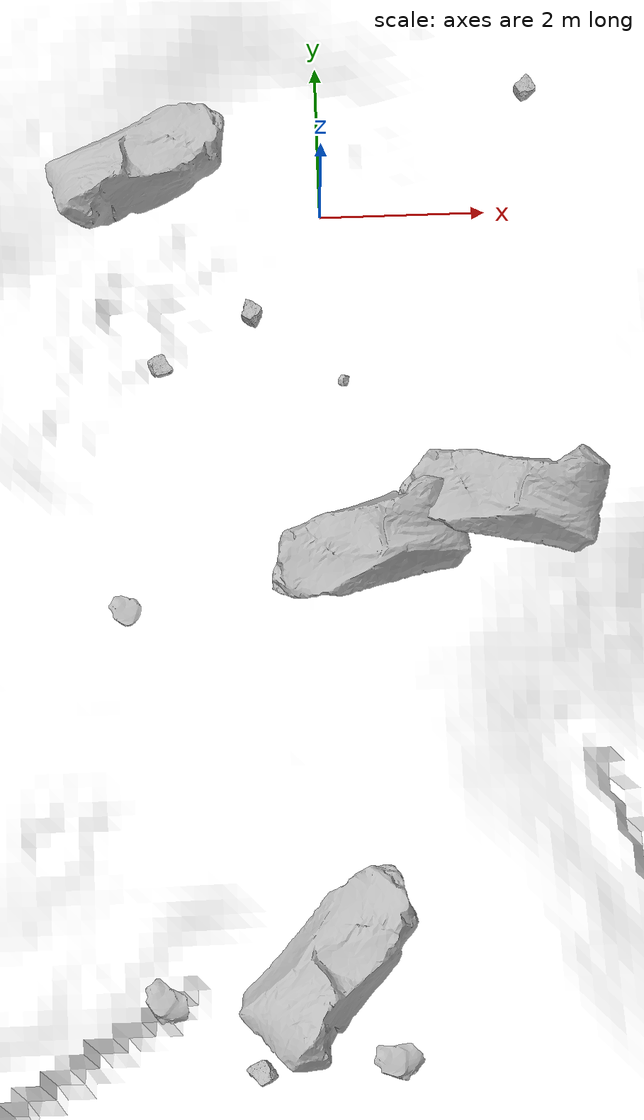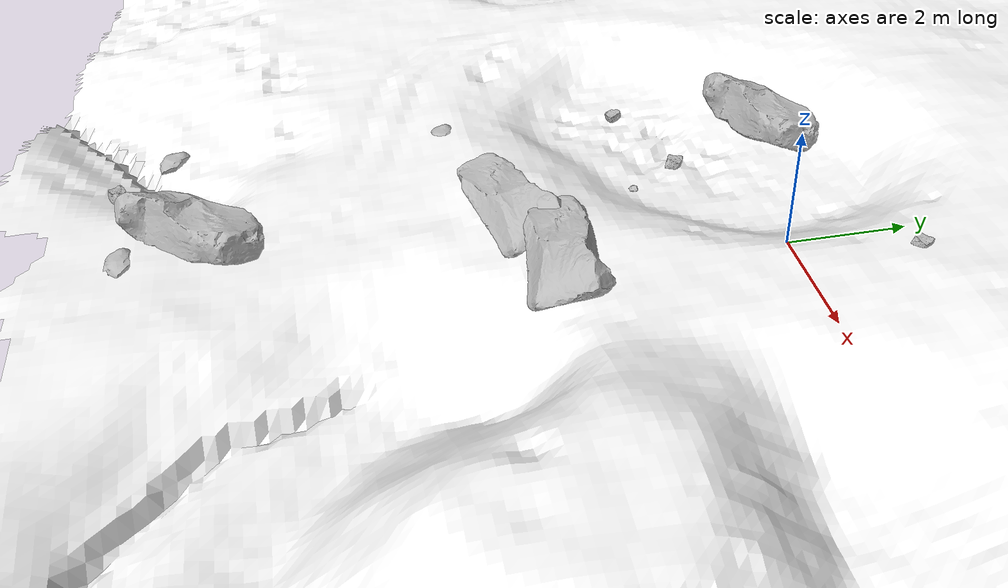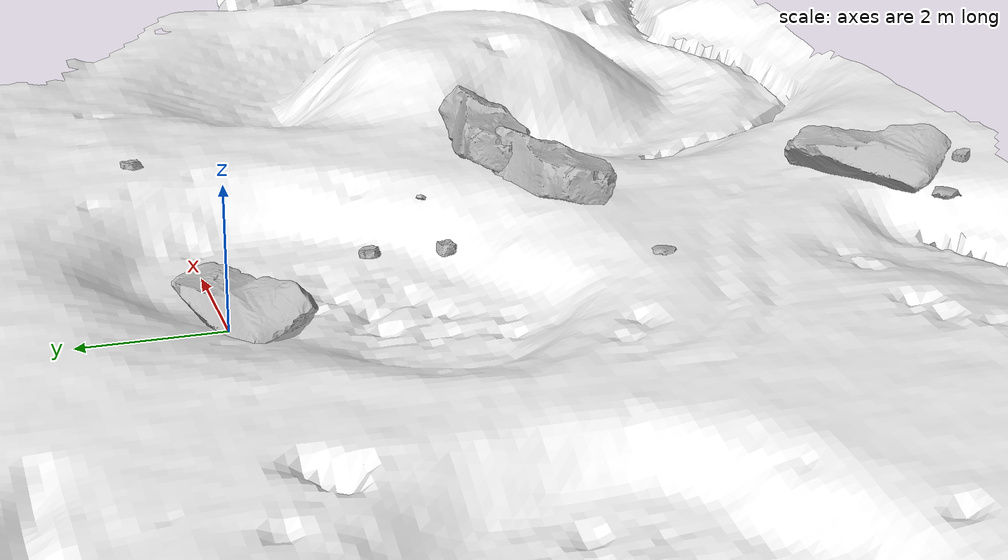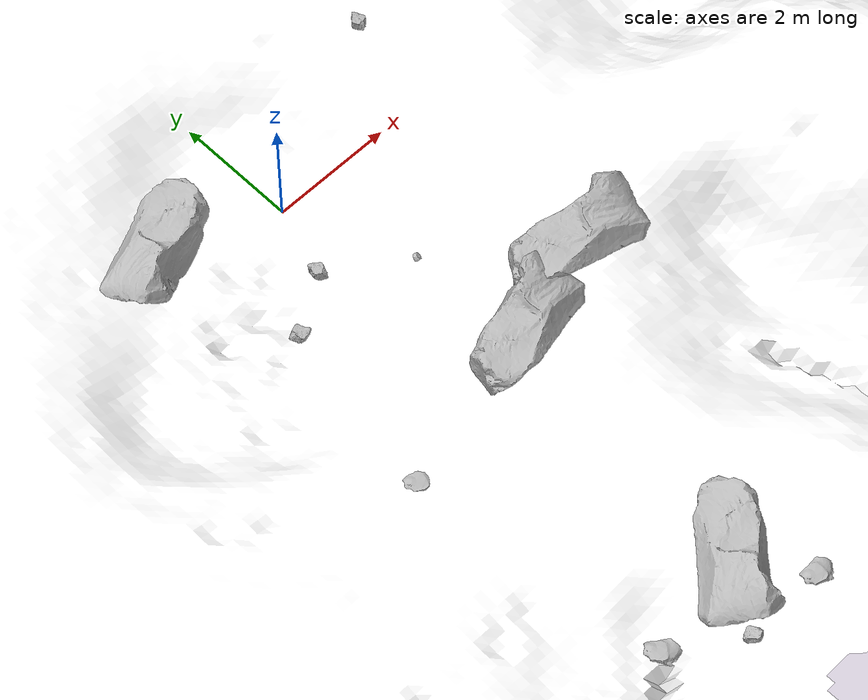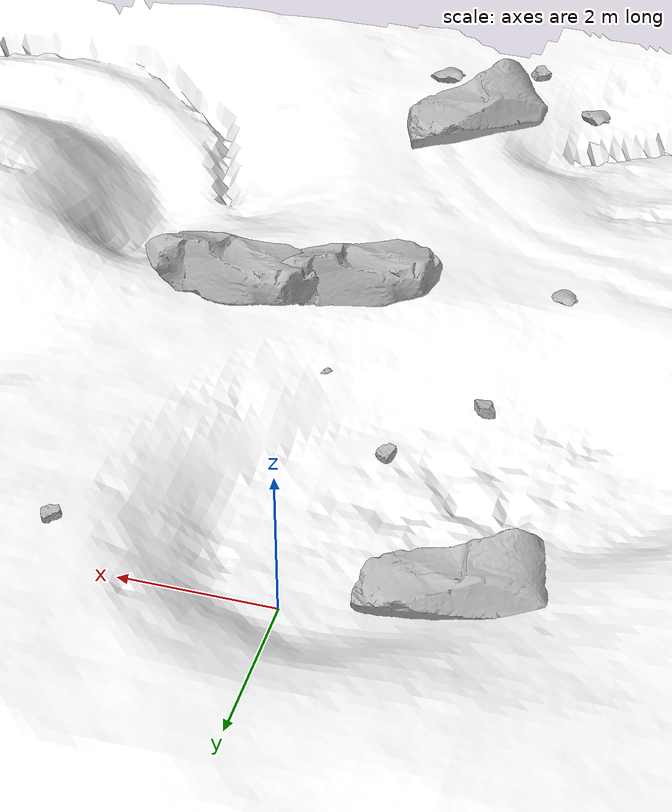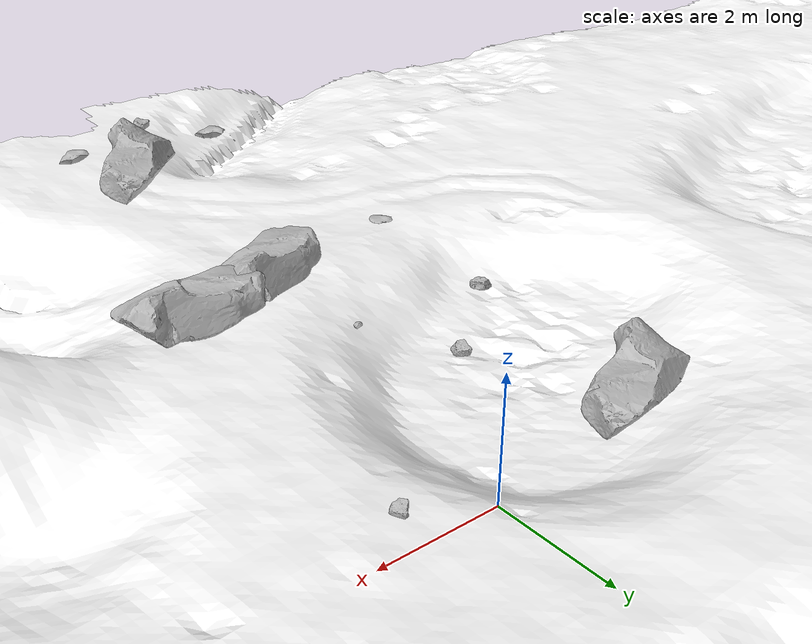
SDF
<sdf version="1.7">
 <world name="marsyard">
  <include><uri>model://mars_yard</uri></include>
  <model name="Rock_23">
   <static>true</static>
   <pose>-1.2053 -5.1009 1.3410 0.0000 0.0000 -0.7992</pose>
   <link name="link">
    <visual name="visual">
     <geometry><mesh><uri>package://rock_generator/rocks_ws/rock_5/meshes/rock_5.obj</uri></mesh></geometry>
    </visual>
   </link>
  </model>
  <model name="Rock_71">
   <static>true</static>
   <pose>1.1582 -5.7052 0.5465 0.0000 0.0000 -2.7900</pose>
   <link name="link">
    <visual name="visual">
     <geometry><mesh><uri>package://rock_generator/rocks_ws/rock_4/meshes/rock_4.obj</uri></mesh></geometry>
    </visual>
   </link>
  </model>
  <model name="Rock_77">
   <static>true</static>
   <pose>0.3291 -4.5137 1.3521 0.0000 0.0000 0.4477</pose>
   <link name="link">
    <visual name="visual">
     <geometry><mesh><uri>package://rock_generator/rocks_ws/rock_4/meshes/rock_4.obj</uri></mesh></geometry>
    </visual>
   </link>
  </model>
  <model name="Rock_81">
   <static>true</static>
   <pose>-0.8604 -1.6707 1.1359 0.0000 0.0000 0.2757</pose>
   <link name="link">
    <visual name="visual">
     <geometry><mesh><uri>package://rock_generator/rocks_ws/rock_1/meshes/rock_1.obj</uri></mesh></geometry>
    </visual>
    <collision name="collision">
     <geometry><mesh><uri>package://rock_generator/rocks_ws/rock_1/meshes/rock_1.obj</uri></mesh></geometry>
    </collision>
   </link>
  </model>
  <model name="Rock_83">
   <static>true</static>
   <pose>2.3586 0.8296 1.5374 0.0000 0.0000 -0.2413</pose>
   <link name="link">
    <visual name="visual">
     <geometry><mesh><uri>package://rock_generator/rocks_ws/rock_1/meshes/rock_1.obj</uri></mesh></geometry>
    </visual>
    <collision name="collision">
     <geometry><mesh><uri>package://rock_generator/rocks_ws/rock_1/meshes/rock_1.obj</uri></mesh></geometry>
    </collision>
   </link>
  </model>
  <model name="Rock_91">
   <static>true</static>
   <pose>-2.0478 -7.4147 1.0240 0.0000 0.0000 1.4463</pose>
   <link name="link">
    <visual name="visual">
     <geometry><mesh><uri>package://rock_generator/rocks_ws/rock_8/meshes/rock_8.obj</uri></mesh></geometry>
    </visual>
    <collision name="collision">
     <geometry><mesh><uri>package://rock_generator/rocks_ws/rock_8/meshes/rock_8.obj</uri></mesh></geometry>
    </collision>
   </link>
  </model>
  <model name="Rock_104">
   <static>true</static>
   <pose>0.4378 -9.8553 1.5216 0.0000 0.0000 -0.2820</pose>
   <link name="link">
    <visual name="visual">
     <geometry><mesh><uri>package://rock_generator/rocks_ws/rock_8/meshes/rock_8.obj</uri></mesh></geometry>
    </visual>
    <collision name="collision">
     <geometry><mesh><uri>package://rock_generator/rocks_ws/rock_8/meshes/rock_8.obj</uri></mesh></geometry>
    </collision>
   </link>
  </model>
  <model name="Rock_146">
   <static>true</static>
   <pose>-0.1375 -8.8663 1.2701 0.0000 0.0000 -2.1464</pose>
   <link name="link">
    <visual name="visual">
     <geometry><mesh><uri>package://rock_generator/rocks_ws/rock_4/meshes/rock_4.obj</uri></mesh></geometry>
    </visual>
   </link>
  </model>
  <model name="Rock_156">
   <static>true</static>
   <pose>1.7959 -4.0496 1.4847 0.0000 0.0000 0.0170</pose>
   <link name="link">
    <visual name="visual">
     <geometry><mesh><uri>package://rock_generator/rocks_ws/rock_4/meshes/rock_4.obj</uri></mesh></geometry>
    </visual>
    <collision name="collision">
     <geometry><mesh><uri>package://rock_generator/rocks_ws/rock_4/meshes/rock_4.obj</uri></mesh></geometry>
    </collision>
   </link>
  </model>
  <model name="Rock_162">
   <static>true</static>
   <pose>-2.2213 -5.1401 1.3154 0.0000 0.0000 -0.5441</pose>
   <link name="link">
    <visual name="visual">
     <geometry><mesh><uri>package://rock_generator/rocks_ws/rock_8/meshes/rock_8.obj</uri></mesh></geometry>
    </visual>
   </link>
  </model>
  <model name="Rock_165">
   <static>true</static>
   <pose>0.1664 -2.6310 1.5144 0.0000 0.0000 1.1619</pose>
   <link name="link">
    <visual name="visual">
     <geometry><mesh><uri>package://rock_generator/rocks_ws/rock_5/meshes/rock_5.obj</uri></mesh></geometry>
    </visual>
   </link>
  </model>
  <model name="Rock_186">
   <static>true</static>
   <pose>-0.6477 1.9902 0.8627 0.0000 0.0000 2.7887</pose>
   <link name="link">
    <visual name="visual">
     <geometry><mesh><uri>package://rock_generator/rocks_ws/rock_1/meshes/rock_1.obj</uri></mesh></geometry>
    </visual>
   </link>
  </model>
  <model name="Rock_191">
   <static>true</static>
   <pose>-1.8394 -2.4020 1.4705 0.0000 0.0000 -2.0610</pose>
   <link name="link">
    <visual name="visual">
     <geometry><mesh><uri>package://rock_generator/rocks_ws/rock_1/meshes/rock_1.obj</uri></mesh></geometry>
    </visual>
   </link>
  </model>
  <model name="Rock_203">
   <static>true</static>
   <pose>-0.6444 -7.6995 1.0648 0.0000 0.0000 -1.7020</pose>
   <link name="link">
    <visual name="visual">
     <geometry><mesh><uri>package://rock_generator/rocks_ws/rock_8/meshes/rock_8.obj</uri></mesh></geometry>
    </visual>
   </link>
  </model>
  <model name="Rock_204">
   <static>true</static>
   <pose>-1.8813 -9.2186 1.5642 0.0000 0.0000 -0.9291</pose>
   <link name="link">
    <visual name="visual">
     <geometry><mesh><uri>package://rock_generator/rocks_ws/rock_8/meshes/rock_8.obj</uri></mesh></geometry>
    </visual>
    <collision name="collision">
     <geometry><mesh><uri>package://rock_generator/rocks_ws/rock_8/meshes/rock_8.obj</uri></mesh></geometry>
    </collision>
   </link>
  </model>
  <model name="Rock_219">
   <static>true</static>
   <pose>2.3565 -5.7564 0.5811 0.0000 0.0000 0.5623</pose>
   <link name="link">
    <visual name="visual">
     <geometry><mesh><uri>package://rock_generator/rocks_ws/rock_8/meshes/rock_8.obj</uri></mesh></geometry>
    </visual>
   </link>
  </model>
  <model name="Rock_265">
   <static>true</static>
   <pose>-0.9417 -9.9232 1.6516 0.0000 0.0000 1.2902</pose>
   <link name="link">
    <visual name="visual">
     <geometry><mesh><uri>package://rock_generator/rocks_ws/rock_1/meshes/rock_1.obj</uri></mesh></geometry>
    </visual>
   </link>
  </model>
  <model name="Rock_272">
   <static>true</static>
   <pose>-2.0827 0.2483 0.8517 0.0000 0.0000 -2.6102</pose>
   <link name="link">
    <visual name="visual">
     <geometry><mesh><uri>package://rock_generator/rocks_ws/rock_4/meshes/rock_4.obj</uri></mesh></geometry>
    </visual>
   </link>
  </model>
 </world>
</sdf>
